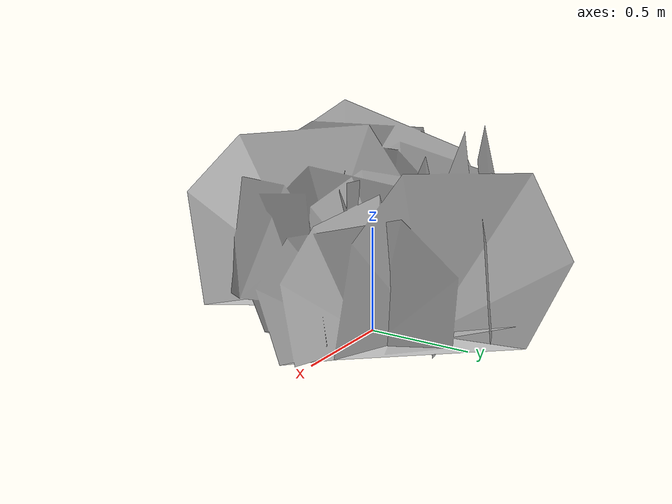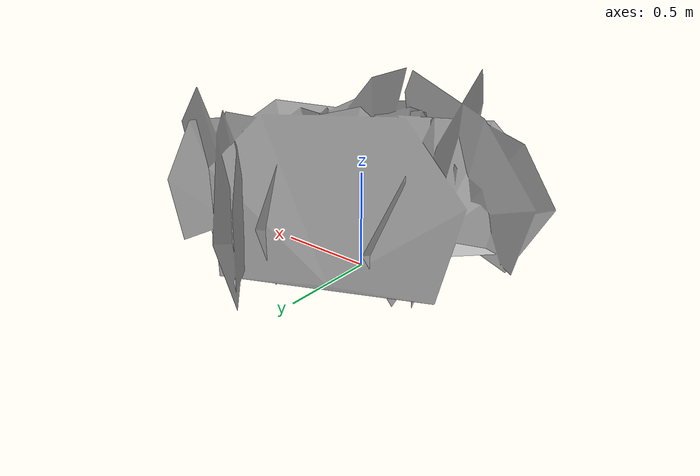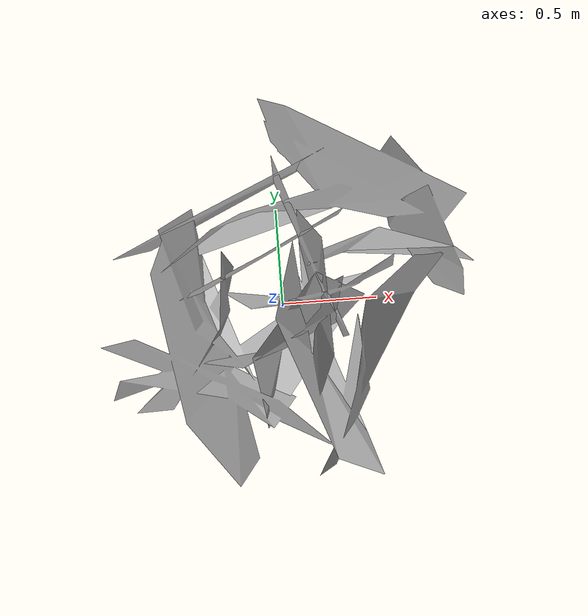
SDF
<?xml version="1.0" ?>
<sdf version="1.6">
  <model name="stylized_bush_low_poly">
    <static>true</static>
    <link name="link">
      <visual name="visual">
        <geometry>
          <mesh>
            <uri>model://stylized_bush_low_poly/Untitled.obj</uri>
            <scale>0.692861 0.692861 0.692861</scale>
          </mesh>
        </geometry>
      </visual>
                  <collision name="collision">
        <geometry>
          <mesh>
            <uri>model://stylized_bush_low_poly/Untitled.obj</uri>
            <scale>0.692861 0.692861 0.692861</scale>
          </mesh>
        </geometry>
      </collision>
    </link>
  </model>
</sdf>
